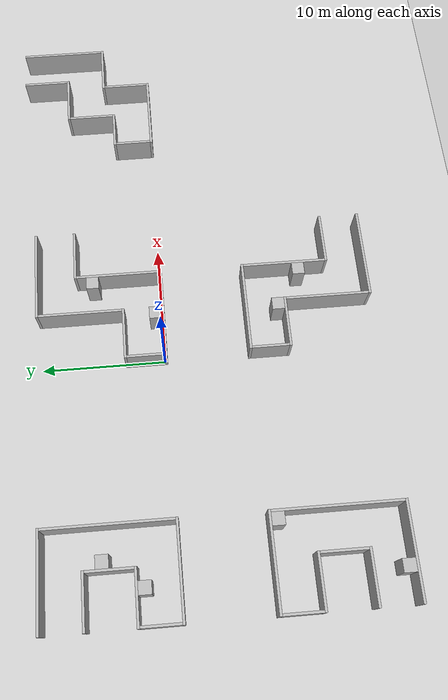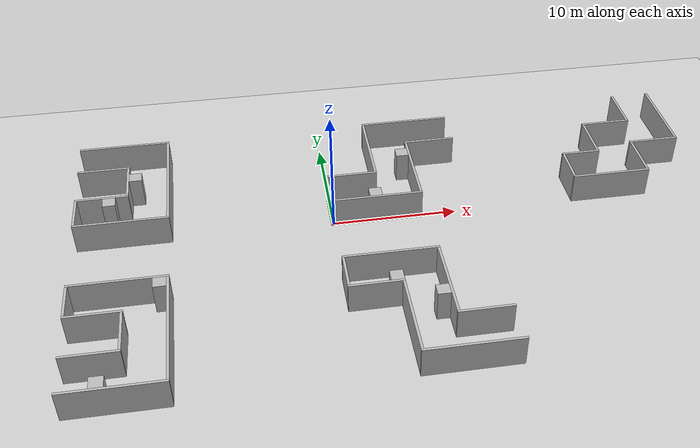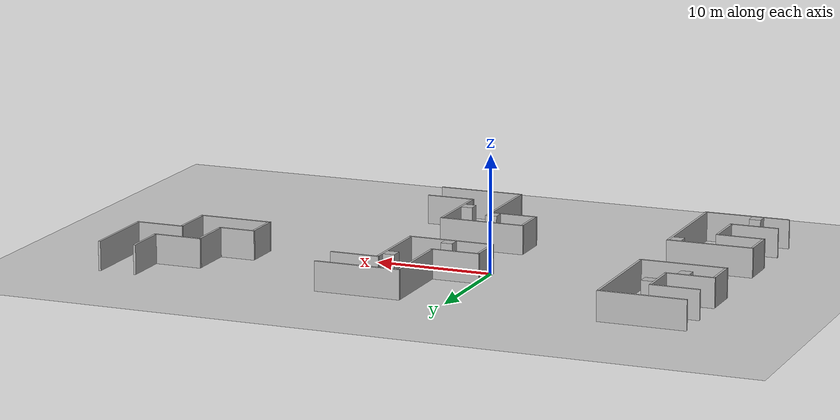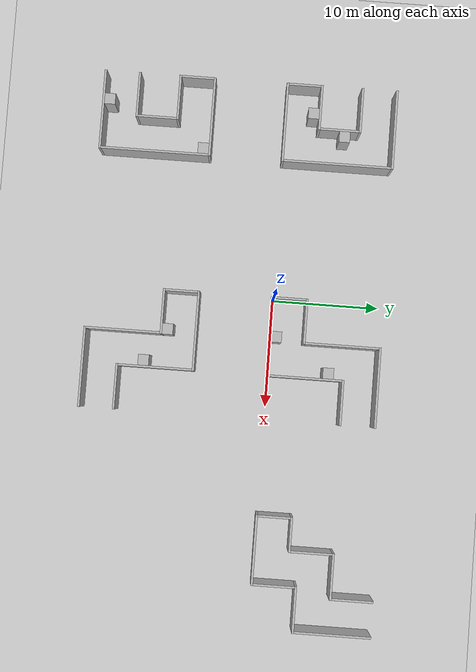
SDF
<?xml version="1.0" ?>
<sdf version="1.4">
	<world name="feedback_experiment_world_0">
		<scene>
			<sky/>
		</scene>
		<include>
			<uri>model://ground_plane</uri>
		</include>
		<include>
			<uri>model://sun</uri>
		</include>
		<model name='World_0'>
			<link name='Wall_1'>
				<collision name='Wall_1_Collision'>
					<geometry>
						<box>
							<size>7.4 0.2 2.5</size>
						</box>
					</geometry>
					<pose>0 0 1.25 0 0 0</pose>
				</collision>
				<visual name='Wall_1_Visual'>
					<pose>0 0 1.25 0 0 0</pose>
					<geometry>
						<box>
						<size>7.4 0.2 2.5</size>
						</box>
					</geometry>
					<material>
						<script>
						<uri>file://media/materials/scripts/kitchen.material</uri>
						<name>Kitchen/Wall</name>
						</script>
					</material>
				</visual>
				<velocity_decay>
					<linear>0</linear>
					<angular>0</angular>
				</velocity_decay>
				<pose>3.5 -0.1 0 0 0 0</pose>
			</link>
			<link name='Wall_2'>
				<collision name='Wall_2_Collision'>
					<geometry>
						<box>
							<size>6.8 0.2 2.5</size>
						</box>
					</geometry>
					<pose>0 0 1.25 0 0 0</pose>
				</collision>
				<visual name='Wall_2_Visual'>
					<pose>0 0 1.25 0 0 0</pose>
					<geometry>
						<box>
							<size>6.8 0.2 2.5</size>
						</box>
					</geometry>
					<material>
						<script>
							<uri>file://media/materials/scripts/kitchen.material</uri>
							<name>Kitchen/Wall</name>
						</script>
					</material>
				</visual>
				<velocity_decay>
					<linear>0</linear>
					<angular>0</angular>
				</velocity_decay>
				<pose>7.1 3.4 0 0 0 1.5708</pose>
			</link>
			<link name='Wall_3'>
				<collision name='Wall_3_Collision'>
					<geometry>
						<box>
							<size>4.2 0.2 2.5</size>
						</box>
					</geometry>
					<pose>0 0 1.25 0 0 0</pose>
				</collision>
				<visual name='Wall_3_Visual'>
					<pose>0 0 1.25 0 0 0</pose>
					<geometry>
						<box>
							<size>4.2 0.2 2.5</size>
						</box>
					</geometry>
					<material>
						<script>
							<uri>file://media/materials/scripts/kitchen.material</uri>
							<name>Kitchen/Wall</name>
						</script>
					</material>
				</visual>
				<velocity_decay>
					<linear>0</linear>
					<angular>0</angular>
				</velocity_decay>
				<pose>9.1 6.9 0 0 0 0</pose>
			</link>
			<link name='Wall_4'>
				<collision name='Wall_4_Collision'>
					<geometry>
						<box>
							<size>7.4 0.2 2.5</size>
						</box>
					</geometry>
					<pose>0 0 1.25 0 0 0</pose>
				</collision>
				<visual name='Wall_4_Visual'>
					<pose>0 0 1.25 0 0 0</pose>
					<geometry>
						<box>
							<size>7.4 0.2 2.5</size>
						</box>
					</geometry>
					<material>
					<script>
						<uri>file://media/materials/scripts/kitchen.material</uri>
						<name>Kitchen/Wall</name>
					</script>
					</material>
				</visual>
				<velocity_decay>
					<linear>0</linear>
					<angular>0</angular>
				</velocity_decay>
				<pose>7.5 10.1 0 0 0 3.14159</pose>
			</link>
			<link name='Wall_5'>
				<collision name='Wall_5_Collision'>
					<geometry>
						<box>
							<size>6.8 0.2 2.5</size>
						</box>
					</geometry>
					<pose>0 0 1.25 0 0 0</pose>
				</collision>
				<visual name='Wall_5_Visual'>
					<pose>0 0 1.25 0 0 0</pose>
					<geometry>
						<box>
							<size>6.8 0.2 2.5</size>
						</box>
					</geometry>
					<material>
					<script>
						<uri>file://media/materials/scripts/kitchen.material</uri>
						<name>Kitchen/Wall</name>
					</script>
					</material>
				</visual>
				<velocity_decay>
					<linear>0</linear>
					<angular>0</angular>
				</velocity_decay>
				<pose>3.9 6.6 0 0 0 -1.5708</pose>
			</link>
			<link name='Wall_6'>
				<collision name='Wall_6_Collision'>
					<geometry>
						<box>
							<size>4.2 0.2 2.5</size>
						</box>
					</geometry>
					<pose>0 0 1.25 0 0 0</pose>
				</collision>
				<visual name='Wall_6_Visual'>
					<pose>0 0 1.25 0 0 0</pose>
					<geometry>
						<box>
							<size>4.2 0.2 2.5</size>
						</box>
					</geometry>
					<material>
					<script>
						<uri>file://media/materials/scripts/kitchen.material</uri>
						<name>Kitchen/Wall</name>
					</script>
					</material>
				</visual>
				<velocity_decay>
					<linear>0</linear>
					<angular>0</angular>
				</velocity_decay>
				<pose>1.9 3.1 0 0 0 3.14159</pose>
			</link>
			<link name='Wall_7'>
				<collision name='Wall_7_Collision'>
					<geometry>
						<box>
							<size>3 0.2 2.5</size>
						</box>
					</geometry>
					<pose>0 0 1.25 0 0 0</pose>
				</collision>
				<visual name='Wall_7_Visual'>
					<pose>0 0 1.25 0 0 0</pose>
					<geometry>
						<box>
							<size>3 0.2 2.5</size>
						</box>
					</geometry>
					<material>
					<script>
						<uri>file://media/materials/scripts/kitchen.material</uri>
						<name>Kitchen/Wall</name>
					</script>
					</material>
				</visual>
				<velocity_decay>
					<linear>0</linear>
					<angular>0</angular>
				</velocity_decay>
				<pose>-0.1 1.5 0 0 0 -1.5708</pose>
			</link>
			<link name='Obstacle_1'>
				<collision name='Obstacle_1_Collision'>
					<geometry>
						<box>
							<size>1 1 2.5</size>
						</box>
					</geometry>
					<pose>0 0 1.25 0 0 0</pose>
				</collision>
				<visual name='Obstacle_1_Visual'>
					<pose>0 0 1.25 0 0 0</pose>
					<geometry>
						<box>
							<size>1 1 2.5</size>
						</box>
					</geometry>
					<material>
					<script>
						<uri>file://media/materials/scripts/kitchen.material</uri>
						<name>Kitchen/Wall</name>
					</script>
					</material>
				</visual>
				<velocity_decay>
					<linear>0</linear>
					<angular>0</angular>
				</velocity_decay>
				<pose>3.5 0.5 0 0 0 0.0</pose>
			</link>
			<link name='Obstacle_2'>
				<collision name='Obstacle_2_Collision'>
					<geometry>
						<box>
							<size>1 1 2.5</size>
						</box>
					</geometry>
					<pose>0 0 1.25 0 0 0</pose>
				</collision>
				<visual name='Obstacle_2_Visual'>
					<pose>0 0 1.25 0 0 0</pose>
					<geometry>
						<box>
							<size>1 1 2.5</size>
						</box>
					</geometry>
					<material>
					<script>
						<uri>file://media/materials/scripts/kitchen.material</uri>
						<name>Kitchen/Wall</name>
					</script>
					</material>
				</visual>
				<velocity_decay>
					<linear>0</linear>
					<angular>0</angular>
				</velocity_decay>
				<pose>6.5 5.5 0 0 0 0.0</pose>
			</link>
			<static>1</static>
		</model>
		<model name='World_1'>
			<link name='Wall_1'>
				<collision name='Wall_1_Collision'>
					<geometry>
						<box>
							<size>7.4 0.2 2.5</size>
						</box>
					</geometry>
					<pose>0 0 1.25 0 0 0</pose>
				</collision>
				<visual name='Wall_1_Visual'>
					<pose>0 0 1.25 0 0 0</pose>
					<geometry>
						<box>
						<size>7.4 0.2 2.5</size>
						</box>
					</geometry>
					<material>
						<script>
						<uri>file://media/materials/scripts/kitchen.material</uri>
						<name>Kitchen/Wall</name>
						</script>
					</material>
				</visual>
				<velocity_decay>
					<linear>0</linear>
					<angular>0</angular>
				</velocity_decay>
				<pose>3.5 3.1 0 0 0 0</pose>
			</link>
			<link name='Wall_2'>
				<collision name='Wall_2_Collision'>
					<geometry>
						<box>
							<size>6.8 0.2 2.5</size>
						</box>
					</geometry>
					<pose>0 0 1.25 0 0 0</pose>
				</collision>
				<visual name='Wall_2_Visual'>
					<pose>0 0 1.25 0 0 0</pose>
					<geometry>
						<box>
							<size>6.8 0.2 2.5</size>
						</box>
					</geometry>
					<material>
						<script>
							<uri>file://media/materials/scripts/kitchen.material</uri>
							<name>Kitchen/Wall</name>
						</script>
					</material>
				</visual>
				<velocity_decay>
					<linear>0</linear>
					<angular>0</angular>
				</velocity_decay>
				<pose>7.1 -0.4 0 0 0 1.5708</pose>
			</link>
			<link name='Wall_3'>
				<collision name='Wall_3_Collision'>
					<geometry>
						<box>
							<size>4.2 0.2 2.5</size>
						</box>
					</geometry>
					<pose>0 0 1.25 0 0 0</pose>
				</collision>
				<visual name='Wall_3_Visual'>
					<pose>0 0 1.25 0 0 0</pose>
					<geometry>
						<box>
							<size>4.2 0.2 2.5</size>
						</box>
					</geometry>
					<material>
						<script>
							<uri>file://media/materials/scripts/kitchen.material</uri>
							<name>Kitchen/Wall</name>
						</script>
					</material>
				</visual>
				<velocity_decay>
					<linear>0</linear>
					<angular>0</angular>
				</velocity_decay>
				<pose>9.1 -3.9 0 0 0 0</pose>
			</link>
			<link name='Wall_4'>
				<collision name='Wall_4_Collision'>
					<geometry>
						<box>
							<size>7.4 0.2 2.5</size>
						</box>
					</geometry>
					<pose>0 0 1.25 0 0 0</pose>
				</collision>
				<visual name='Wall_4_Visual'>
					<pose>0 0 1.25 0 0 0</pose>
					<geometry>
						<box>
							<size>7.4 0.2 2.5</size>
						</box>
					</geometry>
					<material>
					<script>
						<uri>file://media/materials/scripts/kitchen.material</uri>
						<name>Kitchen/Wall</name>
					</script>
					</material>
				</visual>
				<velocity_decay>
					<linear>0</linear>
					<angular>0</angular>
				</velocity_decay>
				<pose>7.5 -7.1 0 0 0 3.14159</pose>
			</link>
			<link name='Wall_5'>
				<collision name='Wall_5_Collision'>
					<geometry>
						<box>
							<size>6.8 0.2 2.5</size>
						</box>
					</geometry>
					<pose>0 0 1.25 0 0 0</pose>
				</collision>
				<visual name='Wall_5_Visual'>
					<pose>0 0 1.25 0 0 0</pose>
					<geometry>
						<box>
							<size>6.8 0.2 2.5</size>
						</box>
					</geometry>
					<material>
					<script>
						<uri>file://media/materials/scripts/kitchen.material</uri>
						<name>Kitchen/Wall</name>
					</script>
					</material>
				</visual>
				<velocity_decay>
					<linear>0</linear>
					<angular>0</angular>
				</velocity_decay>
				<pose>3.9 -3.6 0 0 0 -1.5708</pose>
			</link>
			<link name='Wall_6'>
				<collision name='Wall_6_Collision'>
					<geometry>
						<box>
							<size>4.2 0.2 2.5</size>
						</box>
					</geometry>
					<pose>0 0 1.25 0 0 0</pose>
				</collision>
				<visual name='Wall_6_Visual'>
					<pose>0 0 1.25 0 0 0</pose>
					<geometry>
						<box>
							<size>4.2 0.2 2.5</size>
						</box>
					</geometry>
					<material>
					<script>
						<uri>file://media/materials/scripts/kitchen.material</uri>
						<name>Kitchen/Wall</name>
					</script>
					</material>
				</visual>
				<velocity_decay>
					<linear>0</linear>
					<angular>0</angular>
				</velocity_decay>
				<pose>1.9 -0.1 0 0 0 3.14159</pose>
			</link>
			<link name='Wall_7'>
				<collision name='Wall_7_Collision'>
					<geometry>
						<box>
							<size>3 0.2 2.5</size>
						</box>
					</geometry>
					<pose>0 0 1.25 0 0 0</pose>
				</collision>
				<visual name='Wall_7_Visual'>
					<pose>0 0 1.25 0 0 0</pose>
					<geometry>
						<box>
							<size>3 0.2 2.5</size>
						</box>
					</geometry>
					<material>
					<script>
						<uri>file://media/materials/scripts/kitchen.material</uri>
						<name>Kitchen/Wall</name>
					</script>
					</material>
				</visual>
				<velocity_decay>
					<linear>0</linear>
					<angular>0</angular>
				</velocity_decay>
				<pose>-0.1 1.5 0 0 0 -1.5708</pose>
			</link>
			<link name='Obstacle_1'>
				<collision name='Obstacle_1_Collision'>
					<geometry>
						<box>
							<size>1 1 2.5</size>
						</box>
					</geometry>
					<pose>0 0 1.25 0 0 0</pose>
				</collision>
				<visual name='Obstacle_1_Visual'>
					<pose>0 0 1.25 0 0 0</pose>
					<geometry>
						<box>
							<size>1 1 2.5</size>
						</box>
					</geometry>
					<material>
					<script>
						<uri>file://media/materials/scripts/kitchen.material</uri>
						<name>Kitchen/Wall</name>
					</script>
					</material>
				</visual>
				<velocity_decay>
					<linear>0</linear>
					<angular>0</angular>
				</velocity_decay>
				<pose>3.5 0.5 0 0 0 0.0</pose>
			</link>
			<link name='Obstacle_2'>
				<collision name='Obstacle_2_Collision'>
					<geometry>
						<box>
							<size>1 1 2.5</size>
						</box>
					</geometry>
					<pose>0 0 1.25 0 0 0</pose>
				</collision>
				<visual name='Obstacle_2_Visual'>
					<pose>0 0 1.25 0 0 0</pose>
					<geometry>
						<box>
							<size>1 1 2.5</size>
						</box>
					</geometry>
					<material>
					<script>
						<uri>file://media/materials/scripts/kitchen.material</uri>
						<name>Kitchen/Wall</name>
					</script>
					</material>
				</visual>
				<velocity_decay>
					<linear>0</linear>
					<angular>0</angular>
				</velocity_decay>
				<pose>6.5 -1.5 0 0 0 0.0</pose>
			</link>
			<pose>0 -10 0 0 0 0</pose>
			<static>1</static>
		</model>
		<model name='World_2'>
			<link name='Wall_1'>
				<collision name='Wall_1_Collision'>
					<geometry>
						<box>
							<size>7.4 0.2 2.5</size>
						</box>
					</geometry>
					<pose>0 0 1.25 0 0 0</pose>
				</collision>
				<visual name='Wall_1_Visual'>
					<pose>0 0 1.25 0 0 0</pose>
					<geometry>
						<box>
						<size>7.4 0.2 2.5</size>
						</box>
					</geometry>
					<material>
						<script>
						<uri>file://media/materials/scripts/kitchen.material</uri>
						<name>Kitchen/Wall</name>
						</script>
					</material>
				</visual>
				<velocity_decay>
					<linear>0</linear>
					<angular>0</angular>
				</velocity_decay>
				<pose>3.5 -0.1 0 0 0 0</pose>
			</link>
			<link name='Wall_2'>
				<collision name='Wall_2_Collision'>
					<geometry>
						<box>
							<size>10 0.2 2.5</size>
						</box>
					</geometry>
					<pose>0 0 1.25 0 0 0</pose>
				</collision>
				<visual name='Wall_2_Visual'>
					<pose>0 0 1.25 0 0 0</pose>
					<geometry>
						<box>
							<size>10 0.2 2.5</size>
						</box>
					</geometry>
					<material>
						<script>
							<uri>file://media/materials/scripts/kitchen.material</uri>
							<name>Kitchen/Wall</name>
						</script>
					</material>
				</visual>
				<velocity_decay>
					<linear>0</linear>
					<angular>0</angular>
				</velocity_decay>
				<pose>7.1 5 0 0 0 1.5708</pose>
			</link>
			<link name='Wall_3'>
				<collision name='Wall_3_Collision'>
					<geometry>
						<box>
							<size>7.4 0.2 2.5</size>
						</box>
					</geometry>
					<pose>0 0 1.25 0 0 0</pose>
				</collision>
				<visual name='Wall_3_Visual'>
					<pose>0 0 1.25 0 0 0</pose>
					<geometry>
						<box>
							<size>7.4 0.2 2.5</size>
						</box>
					</geometry>
					<material>
						<script>
							<uri>file://media/materials/scripts/kitchen.material</uri>
							<name>Kitchen/Wall</name>
						</script>
					</material>
				</visual>
				<velocity_decay>
					<linear>0</linear>
					<angular>0</angular>
				</velocity_decay>
				<pose>3.5 10.1 0 0 0 0</pose>
			</link>
			<link name='Wall4'>
				<collision name='Wall_4_Collision'>
					<geometry>
						<box>
							<size>4.2 0.2 2.5</size>
						</box>
					</geometry>
					<pose>0 0 1.25 0 0 0</pose>
				</collision>
				<visual name='Wall_4_Visual'>
					<pose>0 0 1.25 0 0 0</pose>
					<geometry>
						<box>
							<size>4.2 0.2 2.5</size>
						</box>
					</geometry>
					<material>
					<script>
						<uri>file://media/materials/scripts/kitchen.material</uri>
						<name>Kitchen/Wall</name>
					</script>
					</material>
				</visual>
				<velocity_decay>
					<linear>0</linear>
					<angular>0</angular>
				</velocity_decay>
				<pose>1.9 6.9 0 0 0 3.14159</pose>
			</link>
			<link name='Wall_5'>
				<collision name='Wall_5_Collision'>
					<geometry>
						<box>
							<size>3.6 0.2 2.5</size>
						</box>
					</geometry>
					<pose>0 0 1.25 0 0 0</pose>
				</collision>
				<visual name='Wall_5_Visual'>
					<pose>0 0 1.25 0 0 0</pose>
					<geometry>
						<box>
							<size>3.6 0.2 2.5</size>
						</box>
					</geometry>
					<material>
					<script>
						<uri>file://media/materials/scripts/kitchen.material</uri>
						<name>Kitchen/Wall</name>
					</script>
					</material>
				</visual>
				<velocity_decay>
					<linear>0</linear>
					<angular>0</angular>
				</velocity_decay>
				<pose>3.9 5 0 0 0 -1.5708</pose>
			</link>
			<link name='Wall_6'>
				<collision name='Wall_6_Collision'>
					<geometry>
						<box>
							<size>4.2 0.2 2.5</size>
						</box>
					</geometry>
					<pose>0 0 1.25 0 0 0</pose>
				</collision>
				<visual name='Wall_6_Visual'>
					<pose>0 0 1.25 0 0 0</pose>
					<geometry>
						<box>
							<size>4.2 0.2 2.5</size>
						</box>
					</geometry>
					<material>
					<script>
						<uri>file://media/materials/scripts/kitchen.material</uri>
						<name>Kitchen/Wall</name>
					</script>
					</material>
				</visual>
				<velocity_decay>
					<linear>0</linear>
					<angular>0</angular>
				</velocity_decay>
				<pose>1.9 3.1 0 0 0 3.14159</pose>
			</link>
			<link name='Wall_7'>
				<collision name='Wall_7_Collision'>
					<geometry>
						<box>
							<size>3 0.2 2.5</size>
						</box>
					</geometry>
					<pose>0 0 1.25 0 0 0</pose>
				</collision>
				<visual name='Wall_7_Visual'>
					<pose>0 0 1.25 0 0 0</pose>
					<geometry>
						<box>
							<size>3 0.2 2.5</size>
						</box>
					</geometry>
					<material>
					<script>
						<uri>file://media/materials/scripts/kitchen.material</uri>
						<name>Kitchen/Wall</name>
					</script>
					</material>
				</visual>
				<velocity_decay>
					<linear>0</linear>
					<angular>0</angular>
				</velocity_decay>
				<pose>-0.1 1.5 0 0 0 -1.5708</pose>
			</link>
			<link name='Obstacle_1'>
				<collision name='Obstacle_1_Collision'>
					<geometry>
						<box>
							<size>1 1 2.5</size>
						</box>
					</geometry>
					<pose>0 0 1.25 0 0 0</pose>
				</collision>
				<visual name='Obstacle_1_Visual'>
					<pose>0 0 1.25 0 0 0</pose>
					<geometry>
						<box>
							<size>1 1 2.5</size>
						</box>
					</geometry>
					<material>
					<script>
						<uri>file://media/materials/scripts/kitchen.material</uri>
						<name>Kitchen/Wall</name>
					</script>
					</material>
				</visual>
				<velocity_decay>
					<linear>0</linear>
					<angular>0</angular>
				</velocity_decay>
				<pose>2.5 2.5 0 0 0 0.0</pose>
			</link>
			<link name='Obstacle_2'>
				<collision name='Obstacle_2_Collision'>
					<geometry>
						<box>
							<size>1 1 2.5</size>
						</box>
					</geometry>
					<pose>0 0 1.25 0 0 0</pose>
				</collision>
				<visual name='Obstacle_2_Visual'>
					<pose>0 0 1.25 0 0 0</pose>
					<geometry>
						<box>
							<size>1 1 2.5</size>
						</box>
					</geometry>
					<material>
					<script>
						<uri>file://media/materials/scripts/kitchen.material</uri>
						<name>Kitchen/Wall</name>
					</script>
					</material>
				</visual>
				<velocity_decay>
					<linear>0</linear>
					<angular>0</angular>
				</velocity_decay>
				<pose>4.5 5.5 0 0 0 0.0</pose>
			</link>
			<pose>-20 0 0 0 0 0</pose>
			<static>1</static>
		</model>
		<model name='World_3'>
			<link name='Wall_1'>
				<collision name='Wall_1_Collision'>
					<geometry>
						<box>
							<size>7.4 0.2 2.5</size>
						</box>
					</geometry>
					<pose>0 0 1.25 0 0 0</pose>
				</collision>
				<visual name='Wall_1_Visual'>
					<pose>0 0 1.25 0 0 0</pose>
					<geometry>
						<box>
						<size>7.4 0.2 2.5</size>
						</box>
					</geometry>
					<material>
						<script>
						<uri>file://media/materials/scripts/kitchen.material</uri>
						<name>Kitchen/Wall</name>
						</script>
					</material>
				</visual>
				<velocity_decay>
					<linear>0</linear>
					<angular>0</angular>
				</velocity_decay>
				<pose>3.5 3.1 0 0 0 0</pose>
			</link>
			<link name='Wall_2'>
				<collision name='Wall_2_Collision'>
					<geometry>
						<box>
							<size>10 0.2 2.5</size>
						</box>
					</geometry>
					<pose>0 0 1.25 0 0 0</pose>
				</collision>
				<visual name='Wall_2_Visual'>
					<pose>0 0 1.25 0 0 0</pose>
					<geometry>
						<box>
							<size>10 0.2 2.5</size>
						</box>
					</geometry>
					<material>
						<script>
							<uri>file://media/materials/scripts/kitchen.material</uri>
							<name>Kitchen/Wall</name>
						</script>
					</material>
				</visual>
				<velocity_decay>
					<linear>0</linear>
					<angular>0</angular>
				</velocity_decay>
				<pose>7.1 -2 0 0 0 1.5708</pose>
			</link>
			<link name='Wall_3'>
				<collision name='Wall_3_Collision'>
					<geometry>
						<box>
							<size>7.4 0.2 2.5</size>
						</box>
					</geometry>
					<pose>0 0 1.25 0 0 0</pose>
				</collision>
				<visual name='Wall_3_Visual'>
					<pose>0 0 1.25 0 0 0</pose>
					<geometry>
						<box>
							<size>7.4 0.2 2.5</size>
						</box>
					</geometry>
					<material>
						<script>
							<uri>file://media/materials/scripts/kitchen.material</uri>
							<name>Kitchen/Wall</name>
						</script>
					</material>
				</visual>
				<velocity_decay>
					<linear>0</linear>
					<angular>0</angular>
				</velocity_decay>
				<pose>3.5 -7.1 0 0 0 0</pose>
			</link>
			<link name='Wall_4'>
				<collision name='Wall_4_Collision'>
					<geometry>
						<box>
							<size>4.2 0.2 2.5</size>
						</box>
					</geometry>
					<pose>0 0 1.25 0 0 0</pose>
				</collision>
				<visual name='Wall_4_Visual'>
					<pose>0 0 1.25 0 0 0</pose>
					<geometry>
						<box>
							<size>4.2 0.2 2.5</size>
						</box>
					</geometry>
					<material>
					<script>
						<uri>file://media/materials/scripts/kitchen.material</uri>
						<name>Kitchen/Wall</name>
					</script>
					</material>
				</visual>
				<velocity_decay>
					<linear>0</linear>
					<angular>0</angular>
				</velocity_decay>
				<pose>1.9 -3.9 0 0 0 3.14159</pose>
			</link>
			<link name='Wall_5'>
				<collision name='Wall_5_Collision'>
					<geometry>
						<box>
							<size>3.6 0.2 2.5</size>
						</box>
					</geometry>
					<pose>0 0 1.25 0 0 0</pose>
				</collision>
				<visual name='Wall_5_Visual'>
					<pose>0 0 1.25 0 0 0</pose>
					<geometry>
						<box>
							<size>3.6 0.2 2.5</size>
						</box>
					</geometry>
					<material>
					<script>
						<uri>file://media/materials/scripts/kitchen.material</uri>
						<name>Kitchen/Wall</name>
					</script>
					</material>
				</visual>
				<velocity_decay>
					<linear>0</linear>
					<angular>0</angular>
				</velocity_decay>
				<pose>3.9 -2 0 0 0 -1.5708</pose>
			</link>
			<link name='Wall_6'>
				<collision name='Wall_6_Collision'>
					<geometry>
						<box>
							<size>4.2 0.2 2.5</size>
						</box>
					</geometry>
					<pose>0 0 1.25 0 0 0</pose>
				</collision>
				<visual name='Wall_6_Visual'>
					<pose>0 0 1.25 0 0 0</pose>
					<geometry>
						<box>
							<size>4.2 0.2 2.5</size>
						</box>
					</geometry>
					<material>
					<script>
						<uri>file://media/materials/scripts/kitchen.material</uri>
						<name>Kitchen/Wall</name>
					</script>
					</material>
				</visual>
				<velocity_decay>
					<linear>0</linear>
					<angular>0</angular>
				</velocity_decay>
				<pose>1.9 -0.1 0 0 0 3.14159</pose>
			</link>
			<link name='Wall_7'>
				<collision name='Wall_7_Collision'>
					<geometry>
						<box>
							<size>3 0.2 2.5</size>
						</box>
					</geometry>
					<pose>0 0 1.25 0 0 0</pose>
				</collision>
				<visual name='Wall_7_Visual'>
					<pose>0 0 1.25 0 0 0</pose>
					<geometry>
						<box>
							<size>3 0.2 2.5</size>
						</box>
					</geometry>
					<material>
					<script>
						<uri>file://media/materials/scripts/kitchen.material</uri>
						<name>Kitchen/Wall</name>
					</script>
					</material>
				</visual>
				<velocity_decay>
					<linear>0</linear>
					<angular>0</angular>
				</velocity_decay>
				<pose>-0.1 1.5 0 0 0 -1.5708</pose>
			</link>
			<link name='Obstacle_1'>
				<collision name='Obstacle_1_Collision'>
					<geometry>
						<box>
							<size>1 1 2.5</size>
						</box>
					</geometry>
					<pose>0 0 1.25 0 0 0</pose>
				</collision>
				<visual name='Obstacle_1_Visual'>
					<pose>0 0 1.25 0 0 0</pose>
					<geometry>
						<box>
							<size>1 1 2.5</size>
						</box>
					</geometry>
					<material>
					<script>
						<uri>file://media/materials/scripts/kitchen.material</uri>
						<name>Kitchen/Wall</name>
					</script>
					</material>
				</visual>
				<velocity_decay>
					<linear>0</linear>
					<angular>0</angular>
				</velocity_decay>
				<pose>6.5 2.5 0 0 0 0.0</pose>
			</link>
			<link name='Obstacle_2'>
				<collision name='Obstacle_2_Collision'>
					<geometry>
						<box>
							<size>1 1 2.5</size>
						</box>
					</geometry>
					<pose>0 0 1.25 0 0 0</pose>
				</collision>
				<visual name='Obstacle_2_Visual'>
					<pose>0 0 1.25 0 0 0</pose>
					<geometry>
						<box>
							<size>1 1 2.5</size>
						</box>
					</geometry>
					<material>
					<script>
						<uri>file://media/materials/scripts/kitchen.material</uri>
						<name>Kitchen/Wall</name>
					</script>
					</material>
				</visual>
				<velocity_decay>
					<linear>0</linear>
					<angular>0</angular>
				</velocity_decay>
				<pose>2.5 -6.5 0 0 0 0.0</pose>
			</link>
			<pose>-20 -10 0 0 0 0</pose>
			<static>1</static>
		</model>
		<model name='World_4'>
			<link name='Wall_1'>
				<collision name='Wall_1_Collision'>
					<geometry>
						<box>
							<size>6.4 0.2 2.5</size>
						</box>
					</geometry>
					<pose>0 0 1.25 0 0 0</pose>
				</collision>
				<visual name='Wall_1_Visual'>
					<pose>0 0 1.25 0 0 0</pose>
					<geometry>
						<box>
						<size>6.4 0.2 2.5</size>
						</box>
					</geometry>
					<material>
						<script>
						<uri>file://media/materials/scripts/kitchen.material</uri>
						<name>Kitchen/Wall</name>
						</script>
					</material>
				</visual>
				<velocity_decay>
					<linear>0</linear>
					<angular>0</angular>
				</velocity_decay>
				<pose>3 -0.1 0 0 0 0</pose>
			</link>
			<link name='Wall_2'>
				<collision name='Wall_2_Collision'>
					<geometry>
						<box>
							<size>3.8 0.2 2.5</size>
						</box>
					</geometry>
					<pose>0 0 1.25 0 0 0</pose>
				</collision>
				<visual name='Wall_2_Visual'>
					<pose>0 0 1.25 0 0 0</pose>
					<geometry>
						<box>
							<size>3.8 0.2 2.5</size>
						</box>
					</geometry>
					<material>
						<script>
							<uri>file://media/materials/scripts/kitchen.material</uri>
							<name>Kitchen/Wall</name>
						</script>
					</material>
				</visual>
				<velocity_decay>
					<linear>0</linear>
					<angular>0</angular>
				</velocity_decay>
				<pose>6.1 1.9 0 0 0 1.5708</pose>
			</link>
			<link name='Wall_3'>
				<collision name='Wall_3_Collision'>
					<geometry>
						<box>
							<size>4.2 0.2 2.5</size>
						</box>
					</geometry>
					<pose>0 0 1.25 0 0 0</pose>
				</collision>
				<visual name='Wall_3_Visual'>
					<pose>0 0 1.25 0 0 0</pose>
					<geometry>
						<box>
							<size>4.2 0.2 2.5</size>
						</box>
					</geometry>
					<material>
						<script>
							<uri>file://media/materials/scripts/kitchen.material</uri>
							<name>Kitchen/Wall</name>
						</script>
					</material>
				</visual>
				<velocity_decay>
					<linear>0</linear>
					<angular>0</angular>
				</velocity_decay>
				<pose>8.1 3.9 0 0 0 0</pose>
			</link>
			<link name='Wall_4'>
				<collision name='Wall_4_Collision'>
					<geometry>
						<box>
							<size>7 0.2 2.5</size>
						</box>
					</geometry>
					<pose>0 0 1.25 0 0 0</pose>
				</collision>
				<visual name='Wall_4_Visual'>
					<pose>0 0 1.25 0 0 0</pose>
					<geometry>
						<box>
							<size>7 0.2 2.5</size>
						</box>
					</geometry>
					<material>
					<script>
						<uri>file://media/materials/scripts/kitchen.material</uri>
						<name>Kitchen/Wall</name>
					</script>
					</material>
				</visual>
				<velocity_decay>
					<linear>0</linear>
					<angular>0</angular>
				</velocity_decay>
				<pose>10.1 7.5 0 0 0 1.5708</pose>
			</link>
			<link name='Wall_5'>
				<collision name='Wall_5_Collision'>
					<geometry>
						<box>
							<size>3.8 0.2 2.5</size>
						</box>
					</geometry>
					<pose>0 0 1.25 0 0 0</pose>
				</collision>
				<visual name='Wall_5_Visual'>
					<pose>0 0 1.25 0 0 0</pose>
					<geometry>
						<box>
							<size>3.8 0.2 2.5</size>
						</box>
					</geometry>
					<material>
					<script>
						<uri>file://media/materials/scripts/kitchen.material</uri>
						<name>Kitchen/Wall</name>
					</script>
					</material>
				</visual>
				<velocity_decay>
					<linear>0</linear>
					<angular>0</angular>
				</velocity_decay>
				<pose>6.9 9.1 0 0 0 -1.5708</pose>
			</link>
			<link name='Wall_6'>
				<collision name='Wall_6_Collision'>
					<geometry>
						<box>
							<size>4.2 0.2 2.5</size>
						</box>
					</geometry>
					<pose>0 0 1.25 0 0 0</pose>
				</collision>
				<visual name='Wall_6_Visual'>
					<pose>0 0 1.25 0 0 0</pose>
					<geometry>
						<box>
							<size>4.2 0.2 2.5</size>
						</box>
					</geometry>
					<material>
					<script>
						<uri>file://media/materials/scripts/kitchen.material</uri>
						<name>Kitchen/Wall</name>
					</script>
					</material>
				</visual>
				<velocity_decay>
					<linear>0</linear>
					<angular>0</angular>
				</velocity_decay>
				<pose>4.9 7.1 0 0 0 3.14159</pose>
			</link>
			<link name='Wall_7'>
				<collision name='Wall_7_Collision'>
					<geometry>
						<box>
							<size>3.8 0.2 2.5</size>
						</box>
					</geometry>
					<pose>0 0 1.25 0 0 0</pose>
				</collision>
				<visual name='Wall_7_Visual'>
					<pose>0 0 1.25 0 0 0</pose>
					<geometry>
						<box>
							<size>3.8 0.2 2.5</size>
						</box>
					</geometry>
					<material>
					<script>
						<uri>file://media/materials/scripts/kitchen.material</uri>
						<name>Kitchen/Wall</name>
					</script>
					</material>
				</visual>
				<velocity_decay>
					<linear>0</linear>
					<angular>0</angular>
				</velocity_decay>
				<pose>2.9 5.1 0 0 0 -1.5708</pose>
			</link>
			<link name='Wall_8'>
				<collision name='Wall_8_Collision'>
					<geometry>
						<box>
							<size>3.2 0.2 2.5</size>
						</box>
					</geometry>
					<pose>0 0 1.25 0 0 0</pose>
				</collision>
				<visual name='Wall_8_Visual'>
					<pose>0 0 1.25 0 0 0</pose>
					<geometry>
						<box>
							<size>3.2 0.2 2.5</size>
						</box>
					</geometry>
					<material>
					<script>
						<uri>file://media/materials/scripts/kitchen.material</uri>
						<name>Kitchen/Wall</name>
					</script>
					</material>
				</visual>
				<velocity_decay>
					<linear>0</linear>
					<angular>0</angular>
				</velocity_decay>
				<pose>1.4 3.1 0 0 0 3.14159</pose>
			</link>
			<link name='Wall_9'>
				<collision name='Wall_9_Collision'>
					<geometry>
						<box>
							<size>3 0.2 2.5</size>
						</box>
					</geometry>
					<pose>0 0 1.25 0 0 0</pose>
				</collision>
				<visual name='Wall_9_Visual'>
					<pose>0 0 1.25 0 0 0</pose>
					<geometry>
						<box>
							<size>3 0.2 2.5</size>
						</box>
					</geometry>
					<material>
					<script>
						<uri>file://media/materials/scripts/kitchen.material</uri>
						<name>Kitchen/Wall</name>
					</script>
					</material>
				</visual>
				<velocity_decay>
					<linear>0</linear>
					<angular>0</angular>
				</velocity_decay>
				<pose>-0.1 1.5 0 0 0 -1.5708</pose>
			</link>
			<pose>20 0 0 0 0 0</pose>
			<static>1</static>
		</model>
	</world>
</sdf>
